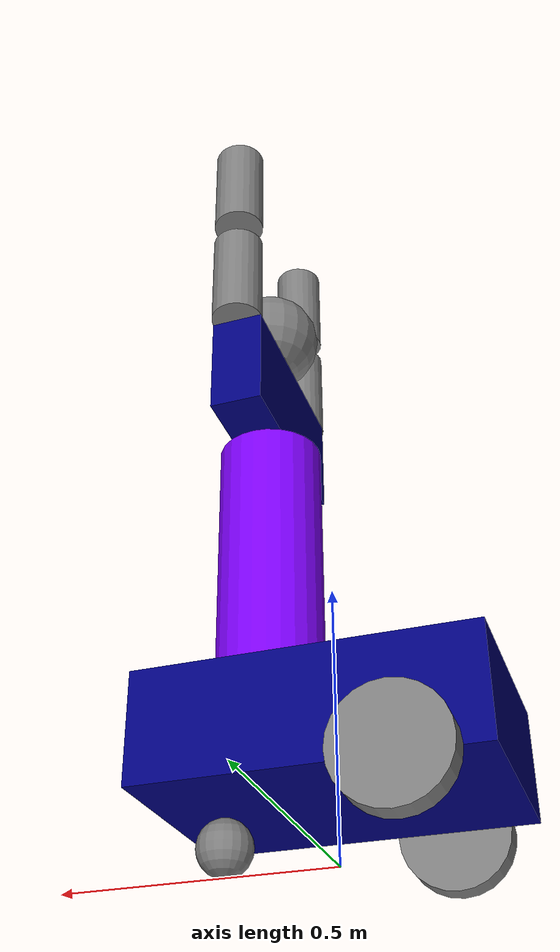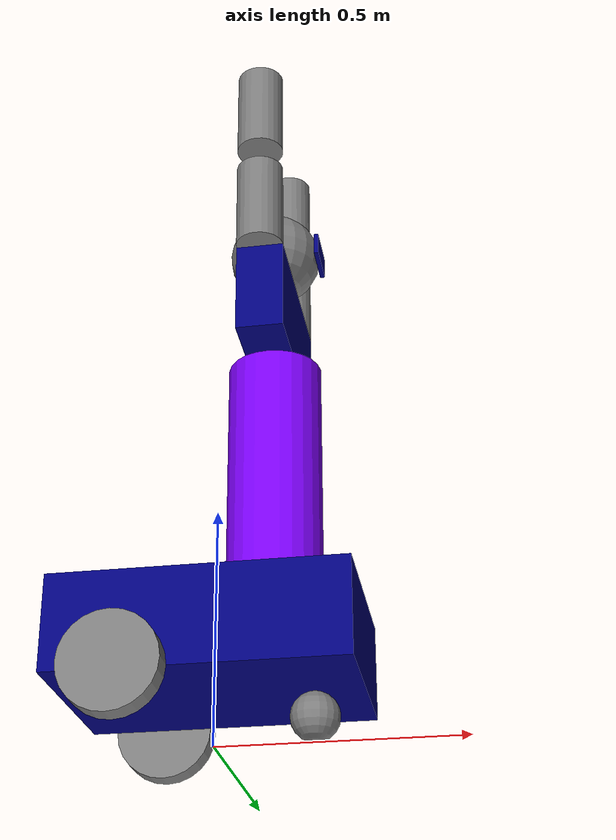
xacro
<?xml version="1.0"?>
<robot name="medibot" xmlns:xacro="http://www.ros.org/wiki/xacro">

    <xacro:include filename="common_properties.xacro" />
    <xacro:include filename="upper_base.urdf.xacro" />
    <xacro:include filename="upper_base_gazebo.xacro" />
    <xacro:include filename="mobile_base.xacro" />
    <xacro:include filename="mobile_base_gazebo.xacro" />
    <xacro:include filename="camera_gazebo.xacro" />
    <xacro:include filename="lidar.xacro" />
    <xacro:include filename="imu.xacro" />

    <joint name="head_camera_joint" type="fixed">
        <parent link="head_link"/>
        <child link="camera_link"/>
        <origin xyz="${head_radius} 0 0" rpy="0 0 0"/>
    </joint>

    <joint name="base_lider_joint" type="fixed">
        <parent link="base_link" />
        <child link="base_scan" />
        <origin xyz="${base_length/10} 0 ${base_height+camera_height/2}" rpy="0 0 0"/>
    </joint>
    <joint name="lider_upper_joint" type="fixed">
        <parent link="base_scan" />
        <child link="body_base_link" />
        <origin xyz="${base_length/10} 0 ${base_height+camera_height}" rpy="0 0 0"/>
    </joint>
</robot>

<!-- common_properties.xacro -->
<robot xmlns:xacro="http://www.ros.org/wiki/xacro">

    <xacro:property name="base_length" value="0.6" />
    <xacro:property name="base_width" value="0.4" />
    <xacro:property name="base_height" value="0.2" />
    <xacro:property name="wheel_radius" value="0.1" />
    <xacro:property name="wheel_length" value="0.05" />

    <xacro:property name="body_length" value="0.5" />
    <xacro:property name="body_radius" value="0.1" />
    <xacro:property name="shoulder_length" value="0.1" />
    <xacro:property name="shoulder_width" value="0.4" />
    <xacro:property name="shoulder_height" value="0.2" />
    <xacro:property name="hand_height" value="0.2" />
    <xacro:property name="hand_radius" value="0.05" />
    <xacro:property name="head_radius" value="0.1" />

    <xacro:property name="camera_length" value="0.01" />
    <xacro:property name="camera_width" value="0.1" />
    <xacro:property name="camera_height" value="0.05" />

    <material name="blue">
        <color rgba="0 0 0.5 1" />
    </material>

    <material name="grey">
        <color rgba="0.5 0.5 0.5 1" />
    </material>

    <material name="yellow">
        <color rgba="1 1 0.5 1" />
    </material>

    <material name="orange">
        <color rgba="1.0 0.65 0.0 1.0" />
    </material>

    <material name="purple">
        <color rgba="0.5 0 1 1" />
    </material>

    <xacro:macro name="box_inertia" params="m l w h xyz rpy">
        <inertial>
            <origin xyz="${xyz}" rpy="${rpy}"/>
            <mass value="${m}"/>
            <inertia ixx="${(m/12)*(h*h+l*l)}" ixy="0.0" ixz="0.0"
                    iyy="${(m/12)*(w*w+l*l)}" iyz="0.0"
                    izz="${(m/12)*(w*w+h*h)}"/>
        </inertial>
    </xacro:macro>

    <xacro:macro name="cylinder_inertia" params="m r h xyz rpy">
        <inertial>
            <origin xyz="${xyz}" rpy="${rpy}"/>
            <mass value="${m}"/>
            <inertia ixx="${(m/12)*(3*r*r+h*h)}" ixy="0.0" ixz="0.0"
                    iyy="${(m/12)*(3*r*r+h*h)}" iyz="0.0"
                    izz="${(m/2)*(r*r)}"/>
        </inertial>
    </xacro:macro>

    <xacro:macro name="sphere_inertia" params="m r xyz rpy">
        <inertial>
            <origin xyz="${xyz}" rpy="${rpy}"/>
            <mass value="${m}"/>
            <inertia ixx="${(2/5)*m*(r*r)}" ixy="0.0" ixz="0.0"
                    iyy="${(2/5)*m*(r*r)}" iyz="0.0"
                    izz="${(2/5)*m*(r*r)}"/>
        </inertial>
    </xacro:macro>

</robot>

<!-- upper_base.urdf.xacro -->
<robot name="medibot" xmlns:xacro="http://www.ros.org/wiki/xacro">

    <!-- upper body link -->
    <link name="body_base_link">
        <visual>
            <geometry>
                <cylinder radius="${body_radius}" length="${body_length}"/>
            </geometry>
            <origin xyz="0 0 0" rpy="0 0 0" />
            <material name="purple" />
        </visual>
        <collision>
            <geometry>
                <cylinder radius="${body_radius}" length="${body_length}" />
            </geometry>
            <origin xyz="0 0 0" rpy="0 0 0" />
        </collision>
        <xacro:cylinder_inertia m="0.5" r="${body_radius}" h="${body_length}"
                            xyz="0 0 0" rpy="0 0 0" />
    </link>

    <!-- shoulder link -->
    <link name="shoulder_link">
        <visual>
            <geometry>
                <box size="${shoulder_length} ${shoulder_width} ${shoulder_height}"/>
            </geometry>
            <origin xyz="0 0.0 0" rpy="0 0 0" />
            <material name="blue"/>
        </visual>
        <collision>
            <geometry>
                <box size="${shoulder_length} ${shoulder_width} ${shoulder_height}"/>
            </geometry>
            <origin xyz="0 0.0 0" rpy="0 0 0" />
        </collision>
        <xacro:box_inertia m="10.0"
        l="${shoulder_length}" w="${shoulder_width}" h="${shoulder_height}"
        xyz="0 0 0" rpy="0 0 0" />
    </link>

    <!-- head link -->
    <link name="head_link">
        <visual>
            <geometry>
                <sphere radius="${head_radius}"/>
            </geometry>
            <origin xyz="0 0 0" rpy="0 0 0" />
            <material name="grey"/>
        </visual>
        <collision>
            <geometry>
                <sphere radius="${head_radius}"/>
            </geometry>
            <origin xyz="0 0 0" rpy="0 0 0" />
        </collision>
        <xacro:sphere_inertia m="0.5" r="${head_radius}" xyz="0 0 0" rpy="0 0 0" />
    </link>

    <!-- right hand link -->
    <link name="right_hand_link">
        <visual>
            <geometry>
                <cylinder radius="${hand_radius}" length="${hand_height}"/>
            </geometry>
            <origin xyz="0 0 ${hand_height/2}" rpy="0 0 0" />
            <material name="grey"/>
        </visual>
        <collision>
            <geometry>
                <cylinder radius="${hand_radius}" length="${hand_height}"/>
            </geometry>
            <origin xyz="0 0 ${hand_height/2}" rpy="0 0 0" />
        </collision>
        <xacro:cylinder_inertia m="0.5" r="${hand_radius}" h="${hand_height}"
                            xyz="0 0 0" rpy="0 0 0" />
    </link>

    <!-- right arm link -->
    <link name="right_arm_link">
        <visual>
            <geometry>
                <cylinder radius="${hand_radius}" length="${hand_height}"/>
            </geometry>
            <origin xyz="0 0 ${hand_height/2+head_radius/2}" rpy="0 0 0" />
            <material name="grey"/>
        </visual>
        <collision>
            <geometry>
                <cylinder radius="${hand_radius}" length="${hand_height}"/>
            </geometry>
            <origin xyz="0 0 ${hand_height/2+head_radius/2}" rpy="0 0 0" />
        </collision>
        <xacro:cylinder_inertia m="0.5" r="${hand_radius}" h="${hand_height}"
                            xyz="0 0 0" rpy="0 0 0" />
    </link>

    <!-- left hand link -->
    <link name="left_hand_link">
        <visual>
            <geometry>
                <cylinder radius="0.05" length="${hand_height}"/>
            </geometry>
            <origin xyz="0 0 ${hand_height/2}" rpy="0 0 0" />
            <material name="grey"/>
        </visual>
        <collision>
            <geometry>
                <cylinder radius="0.05" length="${hand_height}"/>
            </geometry>
            <origin xyz="0 0 ${hand_height/2}" rpy="0 0 0" />
        </collision>
        <xacro:cylinder_inertia m="0.5" r="${hand_radius}" h="${hand_height}"
                            xyz="0 0 0" rpy="0 0 0" />
    </link>

    <!-- left arm link -->
    <link name="left_arm_link">
        <visual>
            <geometry>
                <cylinder radius="${hand_radius}" length="${hand_height}"/>
            </geometry>
            <origin xyz="0 0 ${hand_height/2+head_radius/2}" rpy="0 0 0" />
            <material name="grey"/>
        </visual>
        <collision>
            <geometry>
                <cylinder radius="${hand_radius}" length="${hand_height}"/>
            </geometry>
            <origin xyz="0 0 ${hand_height/2+head_radius/2}" rpy="0 0 0" />
        </collision>
        <xacro:cylinder_inertia m="0.5" r="${hand_radius}" h="${hand_height}"
                            xyz="0 0 0" rpy="0 0 0" />
    </link>

    <joint name="body_shoulder_joint" type="fixed">
        <parent link="body_base_link"/>
        <child link="shoulder_link"/>
        <origin xyz="0 0 ${body_length/2 + shoulder_height/2}" rpy="0 0 0" />
        <axis xyz="0 0 1"/>
        <limit lower="-1.57" upper="1.57" effort="100.0" velocity="1.0"/>
    </joint>

    <joint name="shoulder_head_joint" type="fixed">
        <parent link="shoulder_link"/>
        <child link="head_link"/>
        <origin xyz="0 0.0 ${shoulder_height/2+0.1}" rpy="0 0 0" />
    </joint>

    <joint name="right_hand_shoulder_joint" type="revolute">
        <parent link="shoulder_link"/>
        <child link="right_hand_link"/>
        <origin xyz="0 ${shoulder_width/2} ${shoulder_height/2}" rpy="0 0 0" />
        <axis xyz="0 1 0"/>
        <limit lower="-1.57" upper="1.57" effort="100.0" velocity="1.0"/>
    </joint>
    <joint name="right_hand_arm_joint" type="revolute">
        <parent link="right_hand_link"/>
        <child link="right_arm_link"/>
        <origin xyz="0 0 ${hand_height}" rpy="0 0 0" />
        <axis xyz="0 1 0"/>
        <limit lower="-1.57" upper="1.57" effort="100.0" velocity="1.0"/>
    </joint>

    <joint name="left_hand_shoulder_joint" type="revolute">
        <parent link="shoulder_link"/>
        <child link="left_hand_link"/>
        <origin xyz="0 ${-shoulder_width/2} ${shoulder_height/2}" rpy="0 0 0" />
        <axis xyz="0 1 0"/>
        <limit lower="-1.57" upper="1.57" effort="100.0" velocity="1.0"/>
    </joint>

    <joint name="left_hand_arm_joint" type="revolute">
        <parent link="left_hand_link"/>
        <child link="left_arm_link"/>
        <origin xyz="0 0 ${hand_height}" rpy="0 0 0" />
        <axis xyz="0 1 0"/>
        <limit lower="-1.57" upper="1.57" effort="100.0" velocity="1.0"/>
    </joint>

</robot>

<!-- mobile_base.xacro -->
<robot name="medibot" xmlns:xacro="http://www.ros.org/wiki/xacro">

    <link name="base_footprint" />

    <link name="base_link">
        <visual>
            <geometry>
                <box size="${base_length} ${base_width} ${base_height}" />
            </geometry>
            <origin xyz="0 0 ${base_height / 2.0}" rpy="0 0 0" />
            <material name="blue" />
        </visual>
        <collision>
            <geometry>
                <box size="${base_length} ${base_width} ${base_height}" />
            </geometry>
            <origin xyz="0 0 ${base_height / 2.0}" rpy="0 0 0" />
        </collision>
        <xacro:box_inertia m="5.0" l="${base_length}" w="${base_width}" h="${base_height}" xyz="0 0 ${base_height / 2.0}" rpy="0 0 0" />
    </link>

    <xacro:macro name="wheel_link" params="prefix">
        <link name="${prefix}_wheel_link">
            <visual>
                <geometry>
                    <cylinder radius="${wheel_radius}" length="${wheel_length}" />
                </geometry>
                <origin xyz="0 0 0" rpy="${pi / 2.0} 0 0" />
                <material name="grey" />
            </visual>
            <collision>
                <geometry>
                    <cylinder radius="${wheel_radius}" length="${wheel_length}" />
                </geometry>
                <origin xyz="0 0 0" rpy="${pi / 2.0} 0 0" />
            </collision>
            <xacro:cylinder_inertia m="1.0" r="${wheel_radius}" h="${wheel_length}"
                                xyz="0 0 0" rpy="${pi / 2.0} 0 0" />
        </link>
    </xacro:macro>

    <xacro:wheel_link prefix="right" />
    <xacro:wheel_link prefix="left" />

    <link name="caster_wheel_link">
        <visual>
            <geometry>
                <sphere radius="${wheel_radius / 2.0}" />
            </geometry>
            <origin xyz="0 0 0" rpy="0 0 0" />
            <material name="grey" />
        </visual>
        <collision>
            <geometry>
                <sphere radius="${wheel_radius / 2.0}" />
            </geometry>
            <origin xyz="0 0 0" rpy="0 0 0" />
        </collision>
        <xacro:sphere_inertia m="0.5" r="${wheel_radius / 2.0}" xyz="0 0 0" rpy="0 0 0" />
    </link>

    <joint name="base_joint" type="fixed">
        <parent link="base_footprint" />
        <child link="base_link" />
        <origin xyz="0 0 ${wheel_radius}" rpy="0 0 0"/>
    </joint>

    <joint name="wheel_right_joint" type="continuous">
        <parent link="base_link" />
        <child link="right_wheel_link" />
        <origin xyz="${-base_length / 4.0} ${-(base_width + wheel_length) / 2.0} 0" rpy="0 0 0" />
        <axis xyz="0 1 0" />
    </joint>

    <joint name="wheel_left_joint" type="continuous">
        <parent link="base_link" />
        <child link="left_wheel_link" />
        <origin xyz="${-base_length / 4.0} ${(base_width + wheel_length) / 2.0} 0" rpy="0 0 0" />
        <axis xyz="0 1 0" />
    </joint>

    <joint name="base_caster_wheel_joint" type="fixed">
        <parent link="base_link" />
        <child link="caster_wheel_link" />
        <origin xyz="${base_length / 3.0} 0 ${-wheel_radius / 2.0}" rpy="0 0 0" />
    </joint>

</robot>

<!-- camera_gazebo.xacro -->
<robot name="medibot" xmlns:xacro="http://www.ros.org/wiki/xacro">

    <!--camera link-->
    <link name="camera_link">
        <visual>
            <geometry>
                <box size="${camera_length} ${camera_width} ${camera_height}"/>
            </geometry>
            <material name="blue" />
        </visual>
        <collision>
            <geometry>
                <box size="${camera_length} ${camera_width} ${camera_height}"/>
            </geometry>
        </collision>
        <xacro:box_inertia m="0.1" l="${camera_length}" w="${camera_width}" h="${camera_height}"
                            xyz="0 0 0" rpy="0 0 0" />
    </link>

    <gazebo reference="camera_link">
        <material>
            Gazebo/Blue
        </material>
        <sensor name="camera_sensor" type="camera">
            <pose>0 0 0 0 0 0</pose>
            <visualize>true</visualize>
            <update_rate>10.0</update_rate>
            <plugin name="camera_controller" filename="libgazebo_ros_camera.so">
                <frame_name>camera_link</frame_name>
              </plugin>
        </sensor>
    </gazebo>
</robot>

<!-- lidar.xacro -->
<robot name="medibot" xmlns:xacro="http://www.ros.org/wiki/xacro">
    <xacro:property name="camera_length" value="0.01" />
    <xacro:property name="camera_width" value="0.1" />
    <xacro:property name="camera_height" value="0.05" />

    <!--camera link-->
    <link name="base_scan">
        <visual>
            <geometry>
                <box size="${camera_length} ${camera_width} ${camera_height}"/>
            </geometry>
            <material name="blue" />
        </visual>
        <collision>
            <geometry>
                <box size="${camera_length} ${camera_width} ${camera_height}"/>
            </geometry>
        </collision>
        <xacro:box_inertia m="0.1" l="${camera_length}" w="${camera_width}" h="${camera_height}"
                            xyz="0 0 0" rpy="0 1.57 0" />
    </link>

    <gazebo reference="base_scan">
        <sensor type="ray" name="lidar_sensor">
            <pose>0 0 0 0 0 0</pose>
            <visualize>true</visualize>  <!-- This enables visualization of the scan in Gazebo -->
            <update_rate>5</update_rate> <!-- Frequency of the scan -->
            <ray>
                <scan>
                    <horizontal>
                        <samples>720</samples>  <!-- Number of scan points (angular resolution) -->
                        <resolution>1</resolution>
                        <min_angle>0</min_angle>  <!-- Start scanning from -90 degrees -->
                        <max_angle>6.28</max_angle>  <!-- End scanning at +90 degrees -->
                    </horizontal>
                </scan>
                <range>
                    <min>0.2</min>  <!-- Minimum range of the LiDAR -->
                    <max>30.0</max>  <!-- Maximum range of the LiDAR -->
                </range>
            </ray>
            <plugin name="turtlebot3_laserscan" filename="libgazebo_ros_ray_sensor.so">
                <ros>
                    <remapping>/turtlebot3_laserscan/out:=/scan</remapping>
                </ros>
                <output_type>sensor_msgs/LaserScan</output_type>
                <frame_name>base_scan</frame_name>
                <topic>/scan</topic>
            </plugin>
        </sensor>
    </gazebo>
</robot>

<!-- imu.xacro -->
<robot name="medibot" xmlns:xacro="http://www.ros.org/wiki/xacro">
    <xacro:property name="camera_length" value="0.01" />
    <xacro:property name="camera_width" value="0.1" />
    <xacro:property name="camera_height" value="0.05" />

    <!--camera link-->
    <link name="imu_link">
        <visual>
            <geometry>
                <box size="${camera_length} ${camera_width} ${camera_height}"/>
            </geometry>
            <material name="blue" />
        </visual>
        <collision>
            <geometry>
                <box size="${camera_length} ${camera_width} ${camera_height}"/>
            </geometry>
        </collision>
        <xacro:box_inertia m="0.1" l="${camera_length}" w="${camera_width}" h="${camera_height}"
                            xyz="0 0 0" rpy="0 1.57 0" />
    </link>

    <joint name="base_imu_joint" type="fixed">
        <parent link="base_link"/>
        <child link="imu_link"/>
        <origin xyz="${base_length/2-camera_width} 0 ${base_height}" rpy="0 1.57 0"/>
    </joint>

    <gazebo reference="imu_link">
        <sensor type="imu" name="imu_sensor">
            <!-- ensure the sensor is active (required) -->
            <always_on>true</always_on>
            <update_rate>30</update_rate>
            <plugin name="my_imu_plugin" filename="libgazebo_ros_imu_sensor.so">
                <ros>
                    <remapping>~/out:=imu</remapping>
                </ros>
            </plugin>
        </sensor>
    </gazebo>
</robot>
